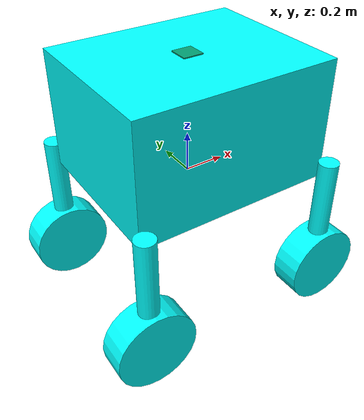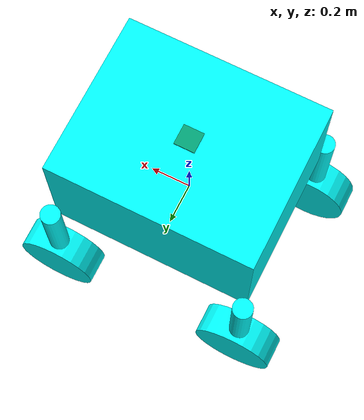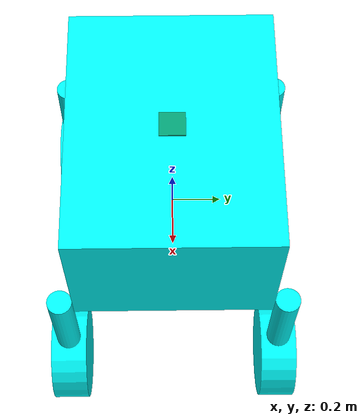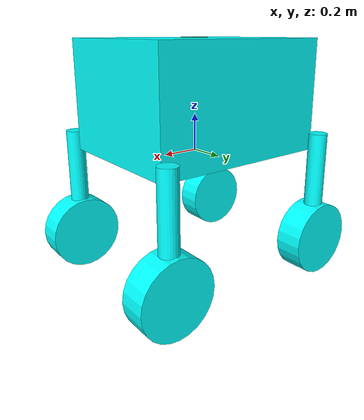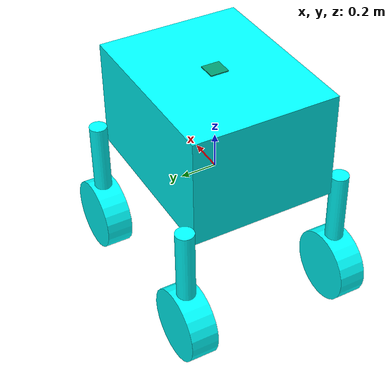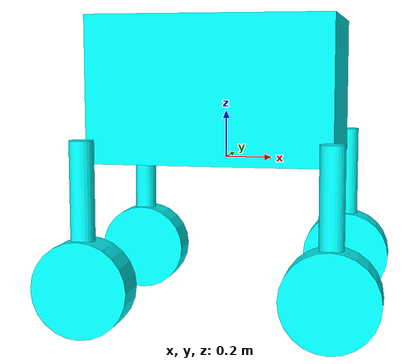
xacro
<?xml version="1.0"?>
<robot xmlns:xacro="http://ros.org/wiki/xacro" name="cyclair_frontsteer">

 <!-- Rover should be facing X axis -->

  <!--Despite the name, this is actually gray plastic.-->
  <material name="grey_plastic">
    <color rgba="0 1.0 1.0 1.0"/>
  </material>

  <material name="black_plastic">
    <color rgba="0 1.0 1.0 1.0"/>
  </material>

  <material name="tire_rubber">
    <color rgba="0 1.0 1.0 1.0"/>
  </material>

  <!-- Main robot body-->
  <link name="base_footprint"/>

  <joint name="footprint_mainbox" type="fixed">
    <parent link="base_footprint"/>
    <child link="main_box"/>
    <origin rpy="0 0 0" xyz="0 0 0.3"/>
    <axis rpy="0 0 0" xyz="0 0 1"/>
  </joint>

  <link name="main_box">
    <visual>
      <geometry>
        <box size="1 0.8 0.6"/>
      </geometry>
      <material name="black_plastic"/>
    </visual>
    <collision>
        <geometry>
            <!-- The to-be-commented XML block goes here. -->
            <box size="1 0.8 0.6"/>
        </geometry>
    </collision>
    <inertial>
      <mass value="100"/>
      <inertia ixx="1.0" ixy="0.0" ixz="0.0" iyy="1.0" iyz="0.0" izz="1.0"/>
    </inertial>
  </link>

  <!-- FRONT STEERING LEFT LEG ===================================================== -->
  <link name="fsl_leg">
    <visual>
      <geometry>
        <cylinder length="0.6" radius="0.05"/>
      </geometry>
      <material name="black_plastic"/>
    </visual>
    <collision>
        <geometry>
            <cylinder length="0.6" radius="0.05"/>
        </geometry>
    </collision>
    <inertial>
      <mass value="6"/>
      <inertia ixx="1.0" ixy="0.0" ixz="0.0" iyy="1.0" iyz="0.0" izz="1.0"/>
    </inertial>
  </link>

  <joint name="main_box_to_fsl_leg" type="revolute">
    <parent link="main_box"/>
    <child link="fsl_leg"/>
    <origin rpy="0 0 0" xyz="0.5 0.45 -0.5"/>
    <axis rpy="0 0 0" xyz="0 0 1"/>
    <limit lower="-0.5" upper="0.5" effort="100" velocity="0.5"/>
  </joint>

  <link name="wheel_fsl">
    <visual>
      <geometry>
        <cylinder length="0.15" radius="0.2"/>
      </geometry>
      <material name="tire_rubber"/>
    </visual>
    <collision>
        <geometry>
           <cylinder length="0.15" radius="0.2"/>
        </geometry>
    </collision>
    <inertial>
      <mass value="6"/>
      <inertia ixx="1.0" ixy="0.0" ixz="0.0" iyy="1.0" iyz="0.0" izz="1.0"/>
    </inertial>
  </link>

  <joint name="fsl_leg_to_wheel_fsl" type="continuous">
    <parent link="fsl_leg"/>
    <child link="wheel_fsl"/>
    <origin rpy="-1.5707 0 0" xyz="0.0 -0.0 -0.3"/>
    <axis rpy="0 0 0" xyz="0 0 1"/>
    <!--limit lower="0" upper="0" effort="10000" velocity="1"/ -->
  </joint>

<!-- FRONT STEERING RIGHT LEG ====================================================-->
  <link name="fsr_leg">
    <visual>
      <geometry>
        <cylinder length="0.6" radius="0.05"/>
      </geometry>
      <material name="black_plastic"/>
    </visual>
    <collision>
        <geometry>
            <cylinder length="0.6" radius="0.05"/>
        </geometry>
    </collision>
    <inertial>
      <mass value="6"/>
      <inertia ixx="1.0" ixy="0.0" ixz="0.0" iyy="1.0" iyz="0.0" izz="1.0"/>
    </inertial>
  </link>

  <joint name="main_box_to_fsr_leg" type="revolute">
    <parent link="main_box"/>
    <child link="fsr_leg"/>
    <origin rpy="0 0 0" xyz="0.5 -0.45 -0.5"/>
    <axis rpy="0 0 0" xyz="0 0 1"/>
    <limit lower="-0.5" upper="0.5" effort="100" velocity="0.5"/>
  </joint>

  <link name="wheel_fsr">
    <visual>
      <geometry>
        <cylinder length="0.15" radius="0.2"/>
      </geometry>
      <material name="tire_rubber"/>
    </visual>
    <collision>
        <geometry>
           <cylinder length="0.15" radius="0.2"/>
        </geometry>
    </collision>
    <inertial>
      <mass value="6"/>
      <inertia ixx="1.0" ixy="0.0" ixz="0.0" iyy="1.0" iyz="0.0" izz="1.0"/>
    </inertial>
  </link>

  <joint name="fsr_leg_to_wheel_fsr" type="continuous">
    <parent link="fsr_leg"/>
    <child link="wheel_fsr"/>
    <origin rpy="-1.5707 0 0" xyz="0.0 0.0 -0.3"/>
    <axis rpy="0 0 0" xyz="0 0 1"/>
    <!--limit lower="0" upper="0" effort="10000" velocity="1"/-->
  </joint>
  <!-- BACK STEERING LEFT LEG ===================================================== -->
  <link name="bl_leg">
    <visual>
      <geometry>
        <cylinder length="0.6" radius="0.05"/>
      </geometry>
      <material name="black_plastic"/>
    </visual>
    <collision>
        <geometry>
            <cylinder length="0.6" radius="0.05"/>
        </geometry>
    </collision>
    <inertial>
      <mass value="6"/>
      <inertia ixx="1.0" ixy="0.0" ixz="0.0" iyy="1.0" iyz="0.0" izz="1.0"/>
    </inertial>
  </link>

  <joint name="main_box_to_bl_leg" type="fixed">
    <parent link="main_box"/>
    <child link="bl_leg"/>
    <origin rpy="0 0 0" xyz="-0.5 0.45 -0.5"/>
    <axis rpy="0 0 0" xyz="0 0 1"/>
    <!--limit lower="-0.5" upper="0.5" effort="10" velocity="0.5"/-->
  </joint>

  <link name="wheel_bl">
    <visual>
      <geometry>
        <cylinder length="0.15" radius="0.2"/>
      </geometry>
      <material name="tire_rubber"/>
    </visual>
    <collision>
        <geometry>
           <cylinder length="0.15" radius="0.2"/>
        </geometry>
    </collision>
    <inertial>
      <mass value="6"/>
      <inertia ixx="1.0" ixy="0.0" ixz="0.0" iyy="1.0" iyz="0.0" izz="1.0"/>
    </inertial>
  </link>

  <joint name="bl_leg_to_wheel_bl" type="continuous">
    <parent link="bl_leg"/>
    <child link="wheel_bl"/>
    <origin rpy="0 1.5707 1.5707" xyz="0.0 -0.0 -0.3"/>
    <axis rpy="0 0 0" xyz="0 0 1"/>
    <!--limit lower="0" upper="0" effort="10000" velocity="1"/ -->
  </joint>

<!-- BACK STEERING RIGHT LEG ====================================================-->
  <link name="br_leg">
    <visual>
      <geometry>
        <cylinder length="0.6" radius="0.05"/>
      </geometry>
      <material name="black_plastic"/>
    </visual>
    <collision>
        <geometry>
            <cylinder length="0.6" radius="0.05"/>
        </geometry>
    </collision>
    <inertial>
      <mass value="6"/>
      <inertia ixx="1.0" ixy="0.0" ixz="0.0" iyy="1.0" iyz="0.0" izz="1.0"/>
    </inertial>
  </link>

  <joint name="main_box_to_br_leg" type="fixed">
    <parent link="main_box"/>
    <child link="br_leg"/>
    <origin rpy="0 0 0" xyz="-0.5 -0.45 -0.5"/>
    <axis rpy="0 0 0" xyz="0 0 1"/>
    <!--limit lower="-0.5" upper="0.5" effort="10" velocity="0.5"/-->
  </joint>

  <link name="wheel_br">
    <visual>
      <geometry>
        <cylinder length="0.15" radius="0.2"/>
      </geometry>
      <material name="tire_rubber"/>
    </visual>
    <collision>
        <geometry>
           <cylinder length="0.15" radius="0.2"/>
        </geometry>
    </collision>
    <inertial>
      <mass value="6"/>
      <inertia ixx="1.0" ixy="0.0" ixz="0.0" iyy="1.0" iyz="0.0" izz="1.0"/>
    </inertial>
  </link>

  <joint name="br_leg_to_wheel_br" type="continuous">
    <parent link="br_leg"/>
    <child link="wheel_br"/>
    <origin rpy="0 1.5707 1.5707" xyz="0.0 0.0 -0.3"/>
    <axis rpy="0 0 0" xyz="0 0 1"/>
    <!--limit lower="0" upper="0" effort="10000" velocity="1"/-->
  </joint>

<!-- IMU LINK -->
  <link name="imu_link">
    <visual>
      <geometry>
        <box size="0.1 0.1 0.01"/>
      </geometry>
    </visual>
    <collision>
      <geometry>
        <box size="0.1 0.1 0.01"/>
      </geometry>
    </collision>
    <inertial>
      <mass value="0.05"/>
      <inertia ixx="1.0e-5" ixy="0.0" ixz="0.0" iyy="1.0e-5" iyz="0.0" izz="1.0e-5"/>
    </inertial>
  </link>

  <joint name="imu_to_mainbox" type="fixed">
    <parent link="main_box"/>
    <child link="imu_link"/>
    <origin rpy="0 0 0" xyz="0 0 0.3005"/>
    <axis rpy="0 0 0" xyz="0 0 1"/>
  </joint>

  <!--TRANSMISSION OF THE WHEEL JOINTS-->
  <!-- Transmission is important to link the joints and the controller -->
  <!-- Transmission of front right wheel -->

  <!-- BACK DRIVES-->
  <!-- Transmission of back right wheel -->
  <transmission name="br_leg_to_wheel_br_trans">
    <type>transmission_interface/SimpleTransmission</type>
    <joint name="br_leg_to_wheel_br">
        <hardwareInterface>hardware_interface/EffortJointInterface</hardwareInterface>
    </joint>
    <actuator name="br_leg_to_wheel_br_motor">
      <hardwareInterface>hardware_interface/EffortJointInterface</hardwareInterface>
      <mechanicalReduction>1</mechanicalReduction>
    </actuator>
  </transmission>
  <!-- Transmission of back left wheel -->
  <transmission name="bl_leg_to_wheel_bl_trans">
    <type>transmission_interface/SimpleTransmission</type>
    <joint name="bl_leg_to_wheel_bl">
        <hardwareInterface>hardware_interface/EffortJointInterface</hardwareInterface>
    </joint>
    <actuator name="bl_leg_to_wheel_bl_motor">
      <hardwareInterface>hardware_interface/EffortJointInterface</hardwareInterface>
      <mechanicalReduction>1</mechanicalReduction>
    </actuator>
  </transmission>

  <!--FRONT DRIVES WITH STEERING -->
  <!-- AXLE drives-->
  <!-- Transmission of front right wheel -->
  <transmission name="fsr_leg_to_wheel_fr_trans">
    <type>transmission_interface/SimpleTransmission</type>
    <joint name="fsr_leg_to_wheel_fsr">
        <hardwareInterface>hardware_interface/EffortJointInterface</hardwareInterface>
    </joint>
    <actuator name="fsr_leg_to_wheel_fsr_motor">
      <hardwareInterface>hardware_interface/EffortJointInterface</hardwareInterface>
      <mechanicalReduction>1</mechanicalReduction>
    </actuator>
  </transmission>
  <!-- Transmission of front left wheel -->
  <transmission name="fsl_leg_to_wheel_fsl_trans">
    <type>transmission_interface/SimpleTransmission</type>
    <joint name="fsl_leg_to_wheel_fsl">
        <hardwareInterface>hardware_interface/EffortJointInterface</hardwareInterface>
    </joint>
    <actuator name="fsl_leg_to_wheel_fsl_motor">
      <hardwareInterface>hardware_interface/EffortJointInterface</hardwareInterface>
      <mechanicalReduction>1</mechanicalReduction>
    </actuator>
  </transmission>

  <!-- STEERING drives front -->
    <!-- Transmission of front right steer -->
  <transmission name="main_box_to_fsr_leg_trans">
    <type>transmission_interface/SimpleTransmission</type>
    <joint name="main_box_to_fsr_leg">
        <hardwareInterface>hardware_interface/EffortJointInterface</hardwareInterface>
    </joint>
    <actuator name="main_box_to_fsr_leg_motor">
      <hardwareInterface>hardware_interface/EffortJointInterface</hardwareInterface>
      <mechanicalReduction>1</mechanicalReduction>
    </actuator>
  </transmission>
  <!-- Transmission of front left steer -->
  <transmission name="main_box_to_fsl_leg_trans">
    <type>transmission_interface/SimpleTransmission</type>
    <joint name="main_box_to_fsl_leg">
        <hardwareInterface>hardware_interface/EffortJointInterface</hardwareInterface>
    </joint>
    <actuator name="main_box_to_fsl_leg_motor">
      <hardwareInterface>hardware_interface/EffortJointInterface</hardwareInterface>
      <mechanicalReduction>1</mechanicalReduction>
    </actuator>
  </transmission>

  <!-- Transmission of back right steering -->
  <!-- Transmission of back left steering -->

</robot>
